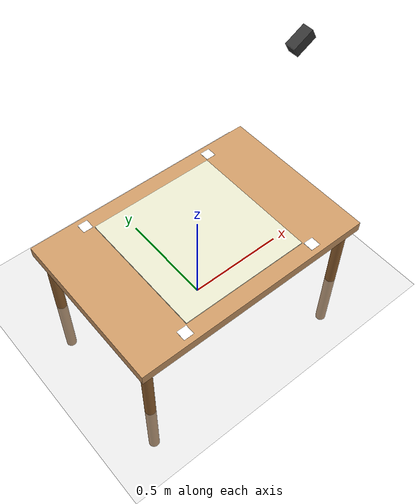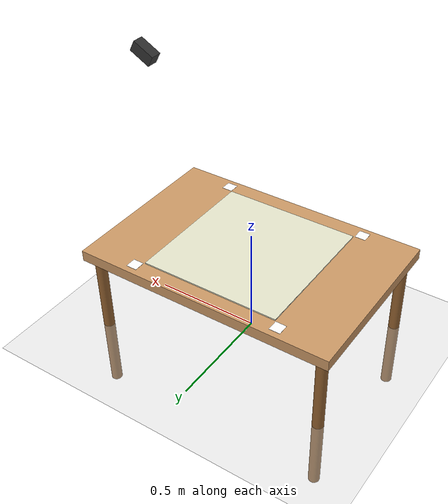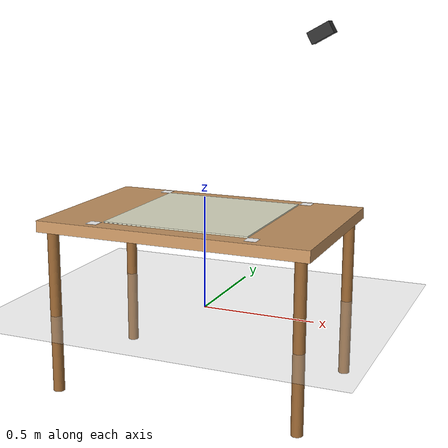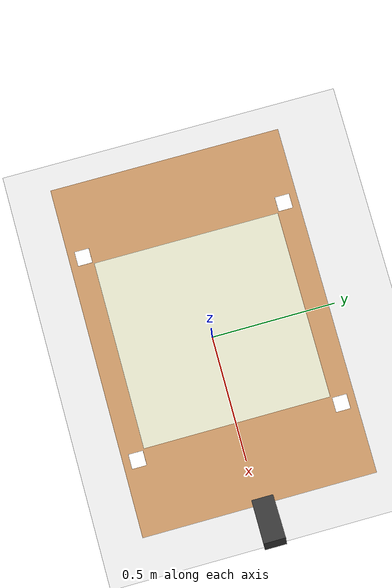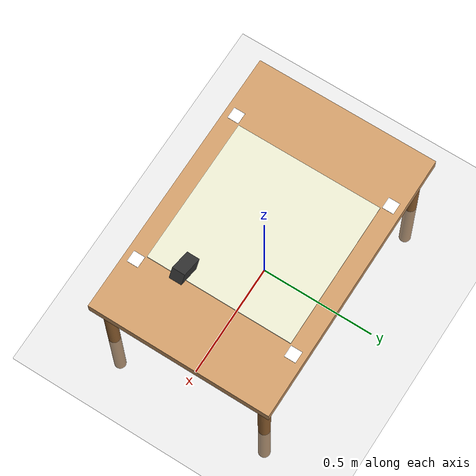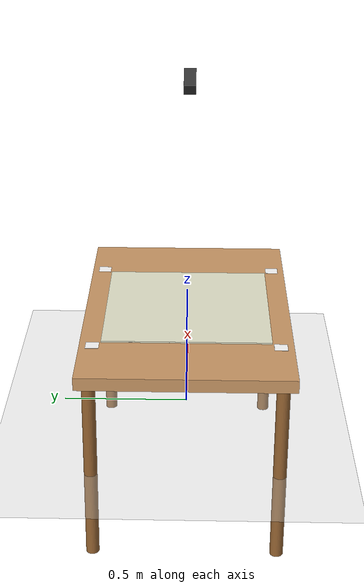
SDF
<?xml version="1.0" ?>
<sdf version="1.9">
  <world name="chess_world">

    <!-- 物理引擎配置 -->
    <physics name="1ms" type="ignored">
      <max_step_size>0.001</max_step_size>
      <real_time_factor>1.0</real_time_factor>
    </physics>

    <!-- 插件配置 -->
    <plugin filename="gz-sim-physics-system" name="gz::sim::systems::Physics">
    </plugin>
    <plugin filename="gz-sim-user-commands-system" name="gz::sim::systems::UserCommands">
    </plugin>
    <plugin filename="gz-sim-scene-broadcaster-system" name="gz::sim::systems::SceneBroadcaster">
    </plugin>
    <plugin filename="gz-sim-sensors-system" name="gz::sim::systems::Sensors">
      <render_engine>ogre2</render_engine>
    </plugin>

    <!-- 光照设置 -->
    <light type="directional" name="sun">
      <cast_shadows>true</cast_shadows>
      <pose>0 0 10 0 0 0</pose>
      <diffuse>0.8 0.8 0.8 1</diffuse>
      <specular>0.2 0.2 0.2 1</specular>
      <attenuation>
        <range>1000</range>
        <constant>0.9</constant>
        <linear>0.01</linear>
        <quadratic>0.001</quadratic>
      </attenuation>
      <direction>-0.5 0.1 -0.9</direction>
    </light>

    <!-- 地面 -->
    <model name="ground_plane">
      <static>true</static>
      <link name="link">
        <collision name="collision">
          <geometry>
            <plane>
              <normal>0 0 1</normal>
              <size>100 100</size>
            </plane>
          </geometry>
        </collision>
        <visual name="visual">
          <geometry>
            <plane>
              <normal>0 0 1</normal>
              <size>100 100</size>
            </plane>
          </geometry>
          <material>
            <ambient>0.8 0.8 0.8 1</ambient>
            <diffuse>0.8 0.8 0.8 1</diffuse>
            <specular>0 0 0 1</specular>
          </material>
        </visual>
      </link>
    </model>

    <!-- 象棋桌 -->
    <model name="chess_table">
      <static>true</static>
      <pose>0 0 0.4 0 0 0</pose>
      <link name="table_top">
        <collision name="collision">
          <geometry>
            <box>
              <size>1.2 0.8 0.05</size>
            </box>
          </geometry>
        </collision>
        <visual name="visual">
          <geometry>
            <box>
              <size>1.2 0.8 0.05</size>
            </box>
          </geometry>
          <material>
            <ambient>0.8 0.6 0.4 1</ambient>
            <diffuse>0.8 0.6 0.4 1</diffuse>
            <specular>0.1 0.1 0.1 1</specular>
          </material>
        </visual>
      </link>

      <!-- 桌腿 -->
      <link name="leg1">
        <pose>0.55 0.35 -0.375 0 0 0</pose>
        <collision name="collision">
          <geometry>
            <cylinder>
              <radius>0.025</radius>
              <length>0.75</length>
            </cylinder>
          </geometry>
        </collision>
        <visual name="visual">
          <geometry>
            <cylinder>
              <radius>0.025</radius>
              <length>0.75</length>
            </cylinder>
          </geometry>
          <material>
            <ambient>0.6 0.4 0.2 1</ambient>
            <diffuse>0.6 0.4 0.2 1</diffuse>
          </material>
        </visual>
      </link>

      <link name="leg2">
        <pose>0.55 -0.35 -0.375 0 0 0</pose>
        <collision name="collision">
          <geometry>
            <cylinder>
              <radius>0.025</radius>
              <length>0.75</length>
            </cylinder>
          </geometry>
        </collision>
        <visual name="visual">
          <geometry>
            <cylinder>
              <radius>0.025</radius>
              <length>0.75</length>
            </cylinder>
          </geometry>
          <material>
            <ambient>0.6 0.4 0.2 1</ambient>
            <diffuse>0.6 0.4 0.2 1</diffuse>
          </material>
        </visual>
      </link>

      <link name="leg3">
        <pose>-0.55 0.35 -0.375 0 0 0</pose>
        <collision name="collision">
          <geometry>
            <cylinder>
              <radius>0.025</radius>
              <length>0.75</length>
            </cylinder>
          </geometry>
        </collision>
        <visual name="visual">
          <geometry>
            <cylinder>
              <radius>0.025</radius>
              <length>0.75</length>
            </cylinder>
          </geometry>
          <material>
            <ambient>0.6 0.4 0.2 1</ambient>
            <diffuse>0.6 0.4 0.2 1</diffuse>
          </material>
        </visual>
      </link>

      <link name="leg4">
        <pose>-0.55 -0.35 -0.375 0 0 0</pose>
        <collision name="collision">
          <geometry>
            <cylinder>
              <radius>0.025</radius>
              <length>0.75</length>
            </cylinder>
          </geometry>
        </collision>
        <visual name="visual">
          <geometry>
            <cylinder>
              <radius>0.025</radius>
              <length>0.75</length>
            </cylinder>
          </geometry>
          <material>
            <ambient>0.6 0.4 0.2 1</ambient>
            <diffuse>0.6 0.4 0.2 1</diffuse>
          </material>
        </visual>
      </link>
    </model>

    <!-- 象棋棋盘 -->
    <model name="chess_board">
      <static>true</static>
      <pose>0 0 0.426 0 0 0</pose>
      <link name="board_link">
        <collision name="collision">
          <geometry>
            <box>
              <size>0.64 0.64 0.01</size>
            </box>
          </geometry>
        </collision>
        <visual name="visual">
          <geometry>
            <box>
              <size>0.64 0.64 0.01</size>
            </box>
          </geometry>
          <material>
            <ambient>0.9 0.9 0.8 1</ambient>
            <diffuse>0.9 0.9 0.8 1</diffuse>
            <specular>0.1 0.1 0.1 1</specular>
          </material>
        </visual>
      </link>
    </model>

    <!-- 棋盘格子标记（用于视觉定位） -->
    <model name="chess_squares">
      <static>true</static>
      <pose>0 0 0.427 0 0 0</pose>

      <!-- 生成8x8棋盘格子的视觉标记 -->
      <link name="squares_link">
        <visual name="squares_visual">
          <geometry>
            <box>
              <size>0.64 0.64 0.001</size>
            </box>
          </geometry>
          <material>
            <script>
              <name>ChessBoard</name>
              <uri>model://chess_board/materials/scripts</uri>
            </script>
          </material>
        </visual>
      </link>
    </model>

    <!-- ArUco标记（用于棋盘定位） -->
    <model name="aruco_marker_0">
      <static>true</static>
      <pose>-0.35 -0.35 0.428 0 0 0</pose>
      <link name="marker_link">
        <visual name="visual">
          <geometry>
            <box>
              <size>0.05 0.05 0.001</size>
            </box>
          </geometry>
          <material>
            <ambient>1 1 1 1</ambient>
            <diffuse>1 1 1 1</diffuse>
            <specular>0 0 0 1</specular>
          </material>
        </visual>
      </link>
    </model>

    <model name="aruco_marker_1">
      <static>true</static>
      <pose>0.35 -0.35 0.428 0 0 0</pose>
      <link name="marker_link">
        <visual name="visual">
          <geometry>
            <box>
              <size>0.05 0.05 0.001</size>
            </box>
          </geometry>
          <material>
            <ambient>1 1 1 1</ambient>
            <diffuse>1 1 1 1</diffuse>
            <specular>0 0 0 1</specular>
          </material>
        </visual>
      </link>
    </model>

    <model name="aruco_marker_2">
      <static>true</static>
      <pose>0.35 0.35 0.428 0 0 0</pose>
      <link name="marker_link">
        <visual name="visual">
          <geometry>
            <box>
              <size>0.05 0.05 0.001</size>
            </box>
          </geometry>
          <material>
            <ambient>1 1 1 1</ambient>
            <diffuse>1 1 1 1</diffuse>
            <specular>0 0 0 1</specular>
          </material>
        </visual>
      </link>
    </model>

    <model name="aruco_marker_3">
      <static>true</static>
      <pose>-0.35 0.35 0.428 0 0 0</pose>
      <link name="marker_link">
        <visual name="visual">
          <geometry>
            <box>
              <size>0.05 0.05 0.001</size>
            </box>
          </geometry>
          <material>
            <ambient>1 1 1 1</ambient>
            <diffuse>1 1 1 1</diffuse>
            <specular>0 0 0 1</specular>
          </material>
        </visual>
      </link>
    </model>

    <!-- 虚拟相机 -->
    <model name="camera_stand">
      <static>true</static>
      <pose>0.5 0 1.2 0 0.5 3.14159</pose>
      <link name="camera_link">
        <visual name="visual">
          <geometry>
            <box>
              <size>0.1 0.05 0.05</size>
            </box>
          </geometry>
          <material>
            <ambient>0.2 0.2 0.2 1</ambient>
            <diffuse>0.2 0.2 0.2 1</diffuse>
          </material>
        </visual>

        <!-- RGB相机传感器 -->
        <sensor name="camera" type="camera">
          <camera>
            <horizontal_fov>1.0472</horizontal_fov>
            <image>
              <width>640</width>
              <height>480</height>
              <format>R8G8B8</format>
            </image>
            <clip>
              <near>0.1</near>
              <far>100</far>
            </clip>
          </camera>
          <always_on>1</always_on>
          <update_rate>10</update_rate>
          <visualize>true</visualize>
          <topic>camera</topic>
        </sensor>

        <!-- 深度相机传感器 -->
        <sensor name="depth_camera" type="depth_camera">
          <camera>
            <horizontal_fov>1.0472</horizontal_fov>
            <image>
              <width>640</width>
              <height>480</height>
              <format>R_FLOAT32</format>
            </image>
            <clip>
              <near>0.1</near>
              <far>10.0</far>
            </clip>
          </camera>
          <always_on>1</always_on>
          <update_rate>10</update_rate>
          <visualize>false</visualize>
          <topic>depth_camera</topic>
        </sensor>
      </link>
    </model>

  </world>
</sdf>
